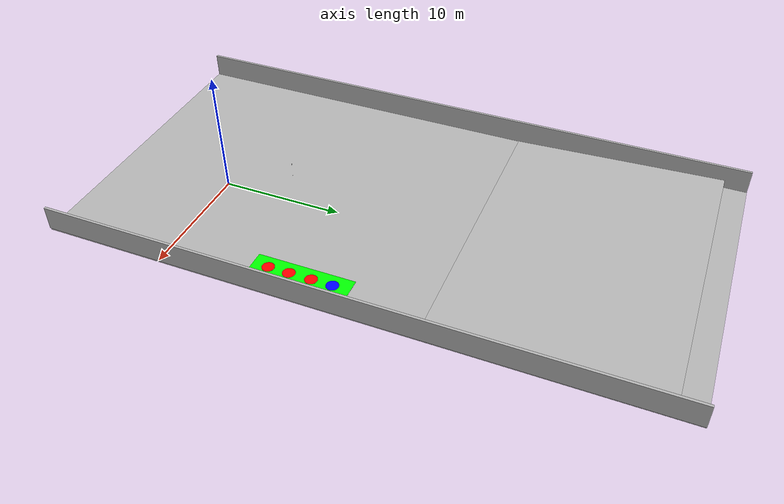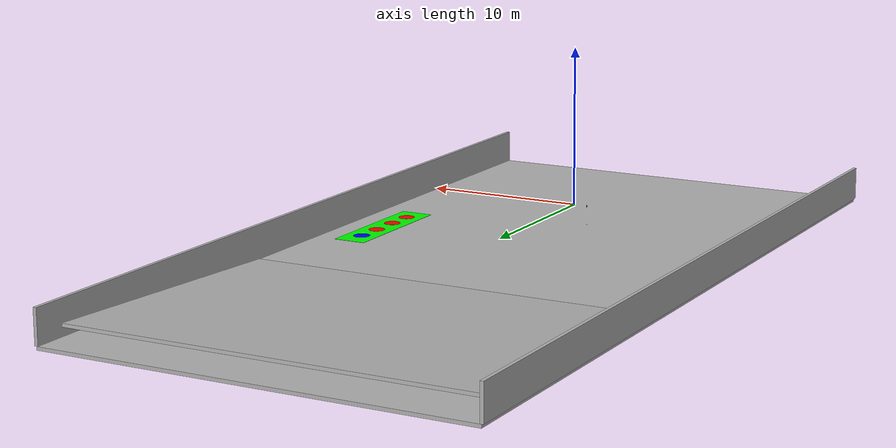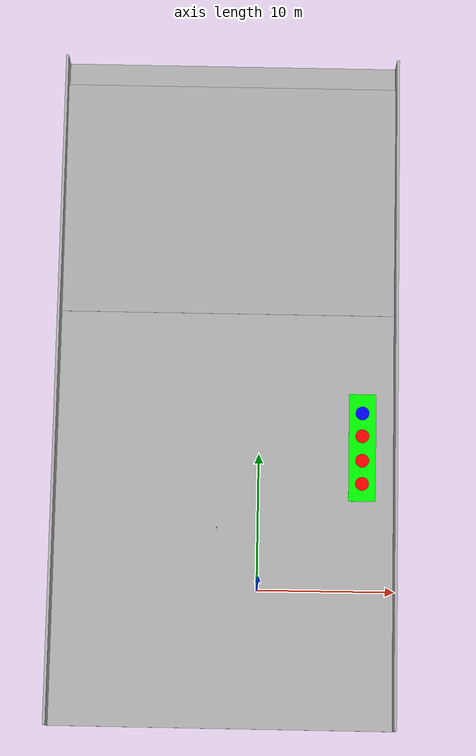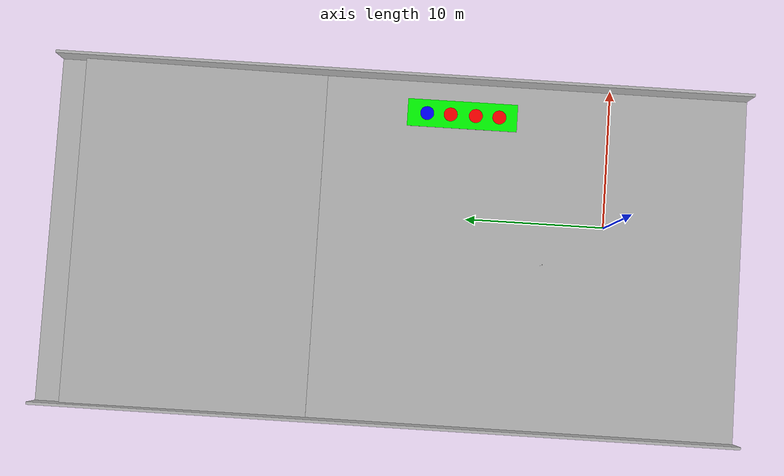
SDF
<sdf version="1.9">
 <world name="hornet_pool">
  <model name="pool_wall_3">
   <static>true</static>
   <link name="link">
    <pose>0 0 1.4 0 -0 0</pose>
    <collision name="collision"><geometry><box><size>25 0.2 2</size></box></geometry></collision>
    <visual name="visual">
     <cast_shadows>false</cast_shadows>
     <geometry><box><size>50 0.2 2</size></box></geometry>
     <material><ambient>0.5 0.5 1 1</ambient><diffuse>0.7 0.7 0.7 1</diffuse></material>
    </visual>
    <inertial>
     <mass>1</mass>
     <inertia><ixx>1</ixx><ixy>0</ixy><ixz>0</ixz><iyy>1</iyy><iyz>0</iyz><izz>1</izz></inertia>
    </inertial>
   </link>
   <pose>10 15 -0.4 0 -0 1.57</pose>
  </model>
  <model name="pool_wall_4">
   <static>true</static>
   <link name="link">
    <pose>0 0 1.4 0 -0 0</pose>
    <collision name="collision"><geometry><box><size>50 0.2 2</size></box></geometry></collision>
    <visual name="visual">
     <cast_shadows>false</cast_shadows>
     <geometry><box><size>50 0.2 2</size></box></geometry>
     <material><ambient>0.5 0.5 1 1</ambient><diffuse>0.7 0.7 0.7 1</diffuse></material>
    </visual>
    <inertial>
     <mass>1</mass>
     <inertia><ixx>1</ixx><ixy>0</ixy><ixz>0</ixz><iyy>1</iyy><iyz>0</iyz><izz>1</izz></inertia>
    </inertial>
   </link>
   <pose>-15 15 -0.4 0 -0 1.5708</pose>
  </model>
  <model name="pool_floor">
   <static>true</static>
   <pose>-2.5 15 -0.1 0 -0 0</pose>
   <link name="floor_link">
    <inertial>
     <inertia><ixx>0.16666</ixx><ixy>0</ixy><ixz>0</ixz><iyy>0.16666</iyy><iyz>0</iyz><izz>0.16666</izz></inertia>
     <mass>1</mass>
    </inertial>
    <collision name="floor_collision"><geometry><box><size>25 50 0.2</size></box></geometry></collision>
    <visual name="floor_visual">
     <geometry><box><size>25 50 0.2</size></box></geometry>
     <material>
      <ambient>0.3 0.3 0.3 1</ambient>
      <diffuse>0.7 0.7 0.7 1</diffuse>
      <specular>1 1 1 1</specular>
     </material>
    </visual>
   </link>
   <static>false</static>
  </model>
  <model name="pool_ramp">
   <static>true</static>
   <pose>-2.5 29.36 0.27 0 0.04 -1.57</pose>
   <link name="ramp_link">
    <inertial>
     <inertia><ixx>0.16666</ixx><ixy>0</ixy><ixz>0</ixz><iyy>0.16666</iyy><iyz>0</iyz><izz>0.16666</izz></inertia>
     <mass>1</mass>
    </inertial>
    <collision name="ramp_collision"><geometry><box><size>17.51 25 0.1</size></box></geometry></collision>
    <visual name="ramp_visual">
     <geometry><box><size>17.51 25 0.2</size></box></geometry>
     <material>
      <ambient>0.3 0.3 0.3 1</ambient>
      <diffuse>0.7 0.7 0.7 1</diffuse>
      <specular>1 1 1 1</specular>
     </material>
    </visual>
   </link>
   <static>false</static>
  </model>
  <model name="green_mat">
   <static>true</static>
   <pose>7.60903 10.6468 -0.030401 0 0 -1.5708</pose>
   <link name="box_link">
    <inertial>
     <inertia><ixx>0.16666</ixx><ixy>0</ixy><ixz>0</ixz><iyy>0.16666</iyy><iyz>0</iyz><izz>0.16666</izz></inertia>
     <mass>1</mass>
    </inertial>
    <collision name="box_collision"><geometry><box><size>8 2 0.1</size></box></geometry></collision>
    <visual name="box_visual">
     <geometry><box><size>8 2 0.1</size></box></geometry>
     <material><ambient>0 1 0 1</ambient><diffuse>0 1 0 1</diffuse><specular>0.4 0.5 0.4 1</specular></material>
    </visual>
   </link>
   <static>false</static>
  </model>
  <model name="blue_drum">
   <static>true</static>
   <pose>7.60903 13.2179 0.019711 0 -0 0</pose>
   <link name="cylinder_link">
    <inertial>
     <inertia>
      <ixx>0.14580000000000001</ixx>
      <ixy>0</ixy>
      <ixz>0</ixz>
      <iyy>0.14580000000000001</iyy>
      <iyz>0</iyz>
      <izz>0.125</izz>
     </inertia>
     <mass>1</mass>
    </inertial>
    <collision name="cylinder_collision">
     <geometry><cylinder><radius>0.5</radius><length>0.01</length></cylinder></geometry>
    </collision>
    <visual name="cylinder_visual">
     <geometry><cylinder><radius>0.5</radius><length>0.01</length></cylinder></geometry>
     <material><ambient>0 0 1 1</ambient><diffuse>0 0 1 1</diffuse><specular>0 0 1 1</specular></material>
    </visual>
   </link>
   <static>false</static>
  </model>
  <model name="red_drum_1">
   <static>true</static>
   <pose>7.61 11.5029 0.02 0 -0 0</pose>
   <link name="cylinder_link">
    <inertial>
     <inertia>
      <ixx>0.14580000000000001</ixx>
      <ixy>0</ixy>
      <ixz>0</ixz>
      <iyy>0.14580000000000001</iyy>
      <iyz>0</iyz>
      <izz>0.125</izz>
     </inertia>
     <mass>1</mass>
    </inertial>
    <collision name="cylinder_collision">
     <geometry><cylinder><radius>0.5</radius><length>0.01</length></cylinder></geometry>
    </collision>
    <visual name="cylinder_visual">
     <geometry><cylinder><radius>0.5</radius><length>0.01</length></cylinder></geometry>
     <material><ambient>1 0 0 1</ambient><diffuse>1 0 0 1</diffuse><specular>1 0 0 1</specular></material>
    </visual>
   </link>
   <static>false</static>
  </model>
  <model name="red_drum_2">
   <static>true</static>
   <pose>7.60903 9.67211 0.02 0 -0 0</pose>
   <link name="cylinder_link">
    <inertial>
     <inertia>
      <ixx>0.14580000000000001</ixx>
      <ixy>0</ixy>
      <ixz>0</ixz>
      <iyy>0.14580000000000001</iyy>
      <iyz>0</iyz>
      <izz>0.125</izz>
     </inertia>
     <mass>1</mass>
    </inertial>
    <collision name="cylinder_collision">
     <geometry><cylinder><radius>0.5</radius><length>0.01</length></cylinder></geometry>
    </collision>
    <visual name="cylinder_visual">
     <geometry><cylinder><radius>0.5</radius><length>0.01</length></cylinder></geometry>
     <material><ambient>1 0 0 1</ambient><diffuse>1 0 0 1</diffuse><specular>1 0 0 1</specular></material>
    </visual>
   </link>
   <static>false</static>
  </model>
  <model name="red_drum_3">
   <static>true</static>
   <pose>7.60903 7.95131 0.02 0 -0 0</pose>
   <link name="cylinder_link">
    <inertial>
     <inertia>
      <ixx>0.14580000000000001</ixx>
      <ixy>0</ixy>
      <ixz>0</ixz>
      <iyy>0.14580000000000001</iyy>
      <iyz>0</iyz>
      <izz>0.125</izz>
     </inertia>
     <mass>1</mass>
    </inertial>
    <collision name="cylinder_collision">
     <geometry><cylinder><radius>0.5</radius><length>0.01</length></cylinder></geometry>
    </collision>
    <visual name="cylinder_visual">
     <geometry><cylinder><radius>0.5</radius><length>0.01</length></cylinder></geometry>
     <material><ambient>1 0 0 1</ambient><diffuse>1 0 0 1</diffuse><specular>1 0 0 1</specular></material>
    </visual>
   </link>
   <static>false</static>
  </model>
  <model name="striped_black_stripes_5">
   <static>true</static>
   <pose>-3.00008 4.41117 1.15751 -1.14439 1.57079 0.383377</pose>
   <link name="box_link">
    <inertial>
     <inertia><ixx>0.16666</ixx><ixy>0</ixy><ixz>0</ixz><iyy>0.16666</iyy><iyz>0</iyz><izz>0.16666</izz></inertia>
     <mass>1</mass>
    </inertial>
    <collision name="box_collision"><geometry><box><size>0.1 0.047 0.047</size></box></geometry></collision>
    <visual name="box_visual">
     <geometry><box><size>0.1 0.047 0.047</size></box></geometry>
     <material><ambient>0 0 0 1</ambient><diffuse>0 0 0 1</diffuse><specular>0 0 0 1</specular></material>
    </visual>
   </link>
   <static>false</static>
  </model>
  <model name="striped_white_stilts_1">
   <static>true</static>
   <pose>-3 4.41117 0.026855 -1.14439 1.57079 0.383377</pose>
   <link name="box_link">
    <inertial>
     <inertia><ixx>0.16666</ixx><ixy>0</ixy><ixz>0</ixz><iyy>0.16666</iyy><iyz>0</iyz><izz>0.16666</izz></inertia>
     <mass>1</mass>
    </inertial>
    <collision name="box_collision"><geometry><box><size>0.04 0.04 0.04</size></box></geometry></collision>
    <visual name="box_visual">
     <geometry><box><size>0.04 0.04 0.04</size></box></geometry>
     <material><ambient>1 1 1 1</ambient><diffuse>1 1 1 1</diffuse><specular>1 1 1 1</specular></material>
    </visual>
   </link>
   <static>false</static>
  </model>
 </world>
</sdf>
